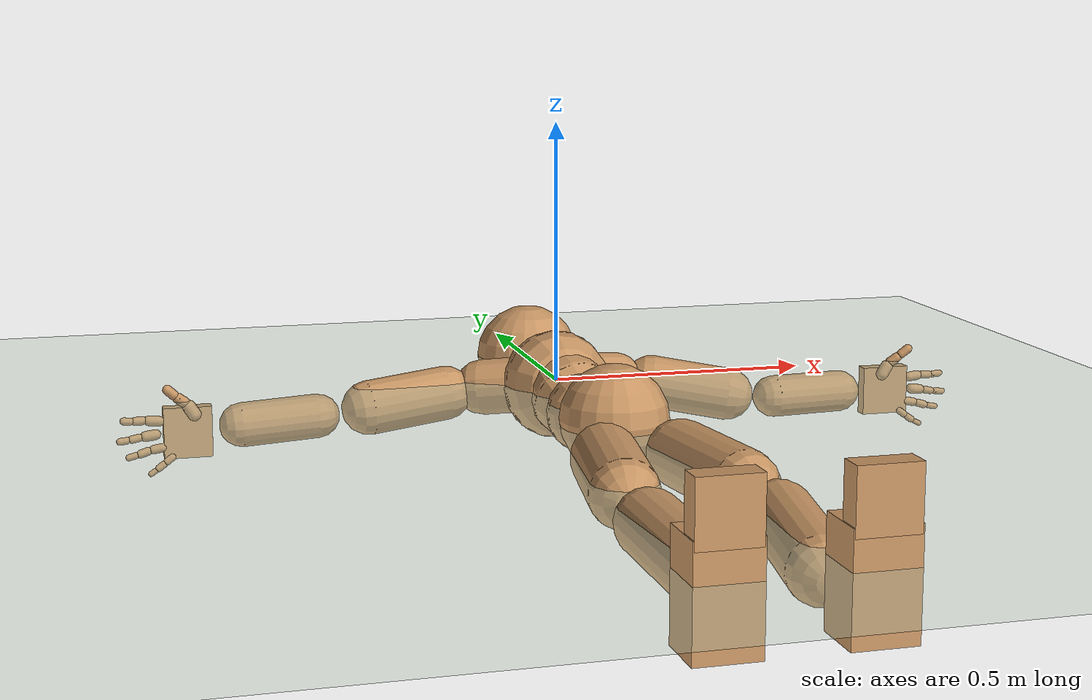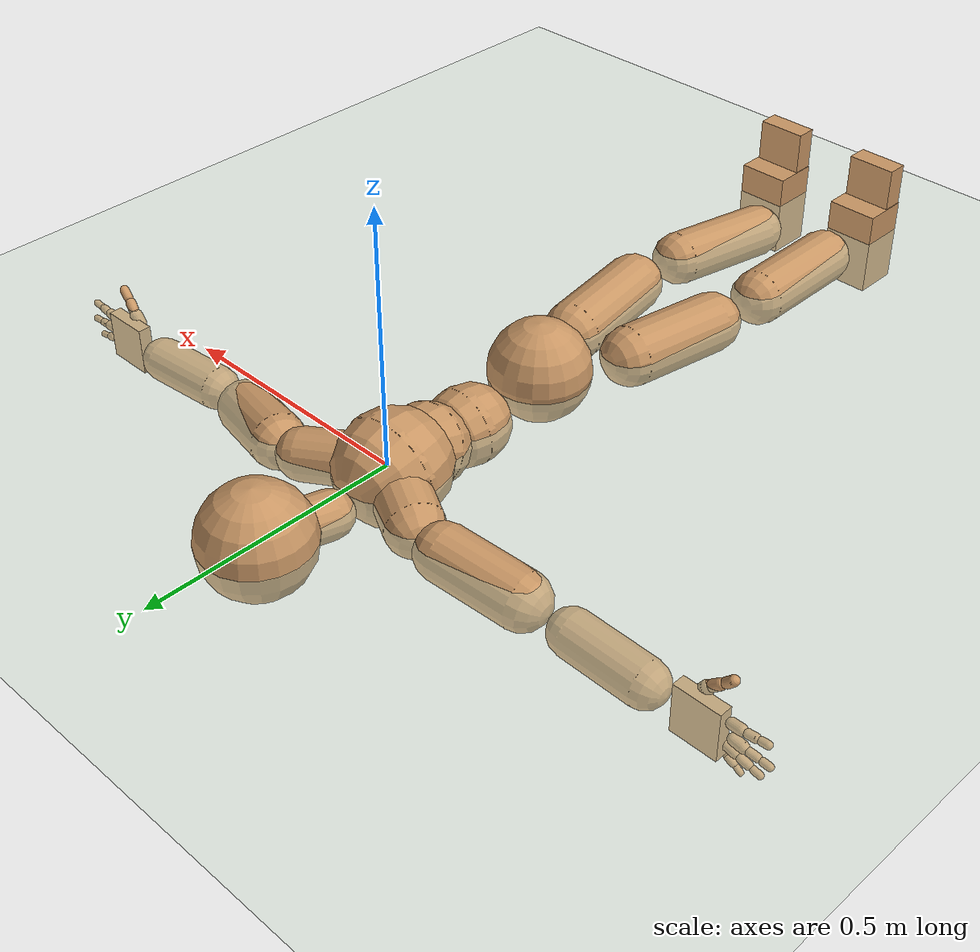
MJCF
<mujoco model="humanoid">
  <compiler coordinate="local"/>
  <default>
    <joint damping="0.0" armature="0.01" stiffness="0.0" limited="true"/>
    <geom conaffinity="1" condim="3" contype="7" margin="0.001" rgba="0.8 0.6 .4 1"/>
  </default>
  <asset>
    <texture type="skybox" builtin="gradient" rgb1=".4 .5 .6" rgb2="0 0 0" width="100" height="100"/>
    <texture builtin="flat" height="1278" mark="cross" markrgb="1 1 1" name="texgeom" random="0.01" rgb1="0.8 0.6 0.4" rgb2="0.8 0.6 0.4" type="cube" width="127"/>
    <texture builtin="checker" height="100" name="texplane" rgb1="0 0 0" rgb2="0.8 0.8 0.8" type="2d" width="100"/>
    <material name="MatPlane" reflectance="0.5" shininess="1" specular="1" texrepeat="60 60" texture="texplane"/>
    <material name="geom" texture="texgeom" texuniform="true"/>
  </asset>
  <worldbody>
    <light cutoff="100" diffuse="1 1 1" dir="-0 0 -1.3" directional="true" exponent="1" pos="0 0 1.3" specular=".1 .1 .1"/>
    <geom conaffinity="1" condim="3" name="floor" pos="0 0 0" rgba="0.8 0.9 0.8 1" size="100 100 .2" type="plane" material="MatPlane"/>
    <body name="Pelvis" pos="0.0028 -0.3775 0.0085">
      <freejoint name="Pelvis"/>
      <geom type="sphere" contype="1" conaffinity="1" density="4629.6296296296305" size="0.0980" pos="0.0000 0.0000 0.0000" name="Pelvis"/>
      <body name="L_Hip" pos="0.0554 -0.0938 -0.0258">
        <joint name="L_Hip_x" type="hinge" pos="0 0 0" axis="1 0 0" user="250 2.5 1 500 10 2" armature="0.01" range="-90.0000 90.0000" damping="0" stiffness="0"/>
        <joint name="L_Hip_y" type="hinge" pos="0 0 0" axis="0 1 0" user="250 2.5 1 500 10 2" armature="0.01" range="-90.0000 90.0000" damping="0" stiffness="0"/>
        <joint name="L_Hip_z" type="hinge" pos="0 0 0" axis="0 0 1" user="250 2.5 1 500 10 2" armature="0.01" range="-90.0000 90.0000" damping="0" stiffness="0"/>
        <geom type="capsule" contype="1" conaffinity="1" density="2040.816327" fromto="0.0114 -0.0709 -0.0008 0.0457 -0.2837 -0.0032" size="0.0594" name="L_Hip"/>
        <body name="L_Knee" pos="0.0572 -0.3546 -0.0039">
          <joint name="L_Knee_x" type="hinge" pos="0 0 0" axis="1 0 0" user="250 2.5 1 500 10 2" armature="0.01" range="-180.0000 180.0000" damping="0" stiffness="0"/>
          <joint name="L_Knee_y" type="hinge" pos="0 0 0" axis="0 1 0" user="250 2.5 1 500 10 2" armature="0.01" range="-5.6250 5.6250" damping="0" stiffness="0"/>
          <joint name="L_Knee_z" type="hinge" pos="0 0 0" axis="0 0 1" user="250 2.5 1 500 10 2" armature="0.01" range="-5.6250 5.6250" damping="0" stiffness="0"/>
          <geom type="capsule" contype="1" conaffinity="1" density="1234.567901" fromto="-0.0090 -0.0750 -0.0057 -0.0359 -0.3001 -0.0229" size="0.0537" name="L_Knee"/>
          <body name="L_Ankle" pos="-0.0448 -0.3751 -0.0286">
            <joint name="L_Ankle_x" type="hinge" pos="0 0 0" axis="1 0 0" user="150 2.5 1 500 10 2" armature="0.01" range="-90.0000 90.0000" damping="0" stiffness="0"/>
            <joint name="L_Ankle_y" type="hinge" pos="0 0 0" axis="0 1 0" user="150 2.5 1 500 10 2" armature="0.01" range="-90.0000 90.0000" damping="0" stiffness="0"/>
            <joint name="L_Ankle_z" type="hinge" pos="0 0 0" axis="0 0 1" user="150 2.5 1 500 10 2" armature="0.01" range="-90.0000 90.0000" damping="0" stiffness="0"/>
            <geom type="box" density="448.896675" pos="0.0422 -0.0264 0.0229" size="0.0513 0.0461 0.0861" quat="1.0000 0.0000 0.0000 0.0000" name="L_Ankle"/>
            <body name="L_Toe" pos="0.0487 -0.0549 0.1186">
              <joint name="L_Toe_x" type="hinge" pos="0 0 0" axis="1 0 0" user="150 1 1 500 1 1" armature="0.01" range="-90.0000 90.0000" damping="0" stiffness="0"/>
              <joint name="L_Toe_y" type="hinge" pos="0 0 0" axis="0 1 0" user="150 1 1 500 1 1" armature="0.01" range="-45.0000 45.0000" damping="0" stiffness="0"/>
              <joint name="L_Toe_z" type="hinge" pos="0 0 0" axis="0 0 1" user="150 1 1 500 1 1" armature="0.01" range="-45.0000 45.0000" damping="0" stiffness="0"/>
              <geom type="box" density="423.112687" pos="-0.0065 0.0034 0.0260" size="0.0494 0.0211 0.0505" quat="1.0000 0.0000 0.0000 0.0000" name="L_Toe"/>
            </body>
          </body>
        </body>
      </body>
      <body name="R_Hip" pos="-0.0602 -0.1061 -0.0198">
        <joint name="R_Hip_x" type="hinge" pos="0 0 0" axis="1 0 0" user="250 2.5 1 500 10 2" armature="0.01" range="-90.0000 90.0000" damping="0" stiffness="0"/>
        <joint name="R_Hip_y" type="hinge" pos="0 0 0" axis="0 1 0" user="250 2.5 1 500 10 2" armature="0.01" range="-90.0000 90.0000" damping="0" stiffness="0"/>
        <joint name="R_Hip_z" type="hinge" pos="0 0 0" axis="0 0 1" user="250 2.5 1 500 10 2" armature="0.01" range="-90.0000 90.0000" damping="0" stiffness="0"/>
        <geom type="capsule" contype="1" conaffinity="1" density="2040.816327" fromto="-0.0093 -0.0675 -0.0025 -0.0371 -0.2699 -0.0098" size="0.0589" name="R_Hip"/>
        <body name="R_Knee" pos="-0.0463 -0.3374 -0.0123">
          <joint name="R_Knee_x" type="hinge" pos="0 0 0" axis="1 0 0" user="250 2.5 1 500 10 2" armature="0.01" range="-180.0000 180.0000" damping="0" stiffness="0"/>
          <joint name="R_Knee_y" type="hinge" pos="0 0 0" axis="0 1 0" user="250 2.5 1 500 10 2" armature="0.01" range="-5.6250 5.6250" damping="0" stiffness="0"/>
          <joint name="R_Knee_z" type="hinge" pos="0 0 0" axis="0 0 1" user="250 2.5 1 500 10 2" armature="0.01" range="-5.6250 5.6250" damping="0" stiffness="0"/>
          <geom type="capsule" contype="1" conaffinity="1" density="1234.567901" fromto="0.0032 -0.0764 -0.0034 0.0127 -0.3058 -0.0136" size="0.0554" name="R_Knee"/>
          <body name="R_Ankle" pos="0.0159 -0.3822 -0.017">
            <joint name="R_Ankle_x" type="hinge" pos="0 0 0" axis="1 0 0" user="150 1 1 500 10 2" armature="0.01" range="-90.0000 90.0000" damping="0" stiffness="0"/>
            <joint name="R_Ankle_y" type="hinge" pos="0 0 0" axis="0 1 0" user="150 1 1 500 10 2" armature="0.01" range="-90.0000 90.0000" damping="0" stiffness="0"/>
            <joint name="R_Ankle_z" type="hinge" pos="0 0 0" axis="0 0 1" user="150 1 1 500 10 2" armature="0.01" range="-90.0000 90.0000" damping="0" stiffness="0"/>
            <geom type="box" density="448.888588" pos="-0.0249 -0.0242 0.0138" size="0.0513 0.0461 0.0861" quat="1.0000 0.0000 0.0000 0.0000" name="R_Ankle"/>
            <body name="R_Toe" pos="-0.0397 -0.0556 0.1195">
              <joint name="R_Toe_x" type="hinge" pos="0 0 0" axis="1 0 0" user="150 1 1 500 1 1" armature="0.01" range="-90.0000 90.0000" damping="0" stiffness="0"/>
              <joint name="R_Toe_y" type="hinge" pos="0 0 0" axis="0 1 0" user="150 1 1 500 1 1" armature="0.01" range="-45.0000 45.0000" damping="0" stiffness="0"/>
              <joint name="R_Toe_z" type="hinge" pos="0 0 0" axis="0 0 1" user="150 1 1 500 1 1" armature="0.01" range="-45.0000 45.0000" damping="0" stiffness="0"/>
              <geom type="box" density="423.111209" pos="0.0147 0.0063 0.0160" size="0.0494 0.0211 0.0505" quat="1.0000 0.0000 0.0000 0.0000" name="R_Toe"/>
            </body>
          </body>
        </body>
      </body>
      <body name="Torso" pos="-0.003 0.1103 -0.0275">
        <joint name="Torso_x" type="hinge" pos="0 0 0" axis="1 0 0" user="500 5 1 500 10 2" armature="0.01" range="-60.0000 60.0000" damping="0" stiffness="0"/>
        <joint name="Torso_y" type="hinge" pos="0 0 0" axis="0 1 0" user="500 5 1 500 10 2" armature="0.01" range="-60.0000 60.0000" damping="0" stiffness="0"/>
        <joint name="Torso_z" type="hinge" pos="0 0 0" axis="0 0 1" user="500 5 1 500 10 2" armature="0.01" range="-60.0000 60.0000" damping="0" stiffness="0"/>
        <geom type="capsule" contype="1" conaffinity="1" density="2040.816327" fromto="0.0045 0.0650 -0.0027 0.0055 0.0794 -0.0033" size="0.0743" name="Torso"/>
        <body name="Spine" pos="0.01 0.1444 -0.0059">
          <joint name="Spine_x" type="hinge" pos="0 0 0" axis="1 0 0" user="500 5 1 500 10 2" armature="0.01" range="-60.0000 60.0000" damping="0" stiffness="0"/>
          <joint name="Spine_y" type="hinge" pos="0 0 0" axis="0 1 0" user="500 5 1 500 10 2" armature="0.01" range="-60.0000 60.0000" damping="0" stiffness="0"/>
          <joint name="Spine_z" type="hinge" pos="0 0 0" axis="0 0 1" user="500 5 1 500 10 2" armature="0.01" range="-60.0000 60.0000" damping="0" stiffness="0"/>
          <geom type="capsule" contype="1" conaffinity="1" density="2040.816327" fromto="-0.0049 0.0257 0.0117 -0.0060 0.0314 0.0143" size="0.0784" name="Spine"/>
          <body name="Chest" pos="-0.011 0.0571 0.026">
            <joint name="Chest_x" type="hinge" pos="0 0 0" axis="1 0 0" user="500 5 1 500 10 2" armature="0.01" range="-60.0000 60.0000" damping="0" stiffness="0"/>
            <joint name="Chest_y" type="hinge" pos="0 0 0" axis="0 1 0" user="500 5 1 500 10 2" armature="0.01" range="-60.0000 60.0000" damping="0" stiffness="0"/>
            <joint name="Chest_z" type="hinge" pos="0 0 0" axis="0 0 1" user="500 5 1 500 10 2" armature="0.01" range="-60.0000 60.0000" damping="0" stiffness="0"/>
            <geom type="capsule" contype="1" conaffinity="1" density="2040.816327" fromto="-0.0022 0.0514 -0.0061 -0.0027 0.0629 -0.0075" size="0.1035" name="Chest"/>
            <body name="Neck" pos="-0.0126 0.1693 -0.0266">
              <joint name="Neck_x" type="hinge" pos="0 0 0" axis="1 0 0" user="150 1 1 250 50 4" armature="0.01" range="-180.0000 180.0000" damping="0" stiffness="0"/>
              <joint name="Neck_y" type="hinge" pos="0 0 0" axis="0 1 0" user="150 1 1 250 50 4" armature="0.01" range="-180.0000 180.0000" damping="0" stiffness="0"/>
              <joint name="Neck_z" type="hinge" pos="0 0 0" axis="0 0 1" user="150 1 1 250 50 4" armature="0.01" range="-180.0000 180.0000" damping="0" stiffness="0"/>
              <geom type="capsule" contype="1" conaffinity="1" density="1000" fromto="0.0051 0.0339 0.0042 0.0206 0.1355 0.0169" size="0.0438" name="Neck"/>
              <body name="Head" pos="0.0257 0.1693 0.0211">
                <joint name="Head_x" type="hinge" pos="0 0 0" axis="1 0 0" user="150 1 1 250 50 4" armature="0.01" range="-90.0000 90.0000" damping="0" stiffness="0"/>
                <joint name="Head_y" type="hinge" pos="0 0 0" axis="0 1 0" user="150 1 1 250 50 4" armature="0.01" range="-90.0000 90.0000" damping="0" stiffness="0"/>
                <joint name="Head_z" type="hinge" pos="0 0 0" axis="0 0 1" user="150 1 1 250 50 4" armature="0.01" range="-90.0000 90.0000" damping="0" stiffness="0"/>
                <geom type="sphere" contype="1" conaffinity="1" density="1000" size="0.1040" pos="0.0000 0.0000 0.0000" name="Head"/>
              </body>
            </body>
            <body name="L_Thorax" pos="0.0461 0.0872 -0.0041">
              <joint name="L_Thorax_x" type="hinge" pos="0 0 0" axis="1 0 0" user="200 2 1 500 50 4" armature="0.01" range="-180.0000 180.0000" damping="0" stiffness="0"/>
              <joint name="L_Thorax_y" type="hinge" pos="0 0 0" axis="0 1 0" user="200 2 1 500 50 4" armature="0.01" range="-180.0000 180.0000" damping="0" stiffness="0"/>
              <joint name="L_Thorax_z" type="hinge" pos="0 0 0" axis="0 0 1" user="200 2 1 500 50 4" armature="0.01" range="-180.0000 180.0000" damping="0" stiffness="0"/>
              <geom type="capsule" contype="1" conaffinity="1" density="1000" fromto="0.0242 0.0113 -0.0033 0.0968 0.0452 -0.0130" size="0.0492" name="L_Thorax"/>
              <body name="L_Shoulder" pos="0.121 0.0566 -0.0163">
                <joint name="L_Shoulder_x" type="hinge" pos="0 0 0" axis="1 0 0" user="200 2 1 500 50 4" armature="0.01" range="-180.0000 180.0000" damping="0" stiffness="0"/>
                <joint name="L_Shoulder_y" type="hinge" pos="0 0 0" axis="0 1 0" user="200 2 1 500 50 4" armature="0.01" range="-180.0000 180.0000" damping="0" stiffness="0"/>
                <joint name="L_Shoulder_z" type="hinge" pos="0 0 0" axis="0 0 1" user="200 2 1 500 50 4" armature="0.01" range="-180.0000 180.0000" damping="0" stiffness="0"/>
                <geom type="capsule" contype="1" conaffinity="1" density="1000" fromto="0.0485 -0.0139 -0.0085 0.1942 -0.0555 -0.0339" size="0.0524" name="L_Shoulder"/>
                <body name="L_Elbow" pos="0.2427 -0.0693 -0.0423">
                  <joint name="L_Elbow_x" type="hinge" pos="0 0 0" axis="1 0 0" user="150 1 1 150 10 2" armature="0.01" range="-720.0000 720.0000" damping="0" stiffness="0"/>
                  <joint name="L_Elbow_y" type="hinge" pos="0 0 0" axis="0 1 0" user="150 1 1 150 10 2" armature="0.01" range="-720.0000 720.0000" damping="0" stiffness="0"/>
                  <joint name="L_Elbow_z" type="hinge" pos="0 0 0" axis="0 0 1" user="150 1 1 150 10 2" armature="0.01" range="-720.0000 720.0000" damping="0" stiffness="0"/>
                  <geom type="capsule" contype="1" conaffinity="1" density="1000" fromto="0.0488 0.0045 -0.0000 0.1951 0.0179 -0.0001" size="0.0416" name="L_Elbow"/>
                  <body name="L_Wrist" pos="0.2439 0.0224 -0.0001">
                    <joint name="L_Wrist_x" type="hinge" pos="0 0 0" axis="1 0 0" user="100 1 1 150 1 1" armature="0.01" range="-180.0000 180.0000" damping="0" stiffness="0"/>
                    <joint name="L_Wrist_y" type="hinge" pos="0 0 0" axis="0 1 0" user="100 1 1 150 1 1" armature="0.01" range="-180.0000 180.0000" damping="0" stiffness="0"/>
                    <joint name="L_Wrist_z" type="hinge" pos="0 0 0" axis="0 0 1" user="100 1 1 150 1 1" armature="0.01" range="-180.0000 180.0000" damping="0" stiffness="0"/>
                    <geom type="box" density="1217.118839" pos="0.0515 -0.0013 -0.0028" size="0.0475 0.0127 0.0481" quat="1.0000 0.0000 0.0000 0.0000" name="L_Wrist"/>
                    <body name="L_Index1" pos="0.1 -0.0083 0.0206">
                      <joint name="L_Index1_x" type="hinge" pos="0 0 0" axis="1 0 0" user="100 10 1 150" armature="0.01" range="-180.0000 180.0000" damping="0" stiffness="0"/>
                      <joint name="L_Index1_y" type="hinge" pos="0 0 0" axis="0 1 0" user="100 10 1 150" armature="0.01" range="-180.0000 180.0000" damping="0" stiffness="0"/>
                      <joint name="L_Index1_z" type="hinge" pos="0 0 0" axis="0 0 1" user="100 10 1 150" armature="0.01" range="-180.0000 180.0000" damping="0" stiffness="0"/>
                      <geom type="capsule" contype="1" conaffinity="1" density="1000" fromto="0.0064 0.0005 0.0006 0.0257 0.0019 0.0024" size="0.0095" name="L_Index1"/>
                      <body name="L_Index2" pos="0.0322 0.0024 0.0031">
                        <joint name="L_Index2_x" type="hinge" pos="0 0 0" axis="1 0 0" user="100 10 1 150" armature="0.01" range="-180.0000 180.0000" damping="0" stiffness="0"/>
                        <joint name="L_Index2_y" type="hinge" pos="0 0 0" axis="0 1 0" user="100 10 1 150" armature="0.01" range="-180.0000 180.0000" damping="0" stiffness="0"/>
                        <joint name="L_Index2_z" type="hinge" pos="0 0 0" axis="0 0 1" user="100 10 1 150" armature="0.01" range="-180.0000 180.0000" damping="0" stiffness="0"/>
                        <geom type="capsule" contype="1" conaffinity="1" density="1000" fromto="0.0045 -0.0005 -0.0000 0.0181 -0.0019 -0.0001" size="0.0079" name="L_Index2"/>
                        <body name="L_Index3" pos="0.0227 -0.0024 -0.0001">
                          <joint name="L_Index3_x" type="hinge" pos="0 0 0" axis="1 0 0" user="100 10 1 150" armature="0.01" range="-180.0000 180.0000" damping="0" stiffness="0"/>
                          <joint name="L_Index3_y" type="hinge" pos="0 0 0" axis="0 1 0" user="100 10 1 150" armature="0.01" range="-180.0000 180.0000" damping="0" stiffness="0"/>
                          <joint name="L_Index3_z" type="hinge" pos="0 0 0" axis="0 0 1" user="100 10 1 150" armature="0.01" range="-180.0000 180.0000" damping="0" stiffness="0"/>
                          <geom type="capsule" contype="1" conaffinity="1" density="1000" fromto="0.0049 -0.0001 0.0004 0.0197 -0.0003 0.0015" size="0.0066" name="L_Index3"/>
                        </body>
                      </body>
                    </body>
                    <body name="L_Middle1" pos="0.1076 -0.0059 -0.0037">
                      <joint name="L_Middle1_x" type="hinge" pos="0 0 0" axis="1 0 0" user="100 10 1 150" armature="0.01" range="-180.0000 180.0000" damping="0" stiffness="0"/>
                      <joint name="L_Middle1_y" type="hinge" pos="0 0 0" axis="0 1 0" user="100 10 1 150" armature="0.01" range="-180.0000 180.0000" damping="0" stiffness="0"/>
                      <joint name="L_Middle1_z" type="hinge" pos="0 0 0" axis="0 0 1" user="100 10 1 150" armature="0.01" range="-180.0000 180.0000" damping="0" stiffness="0"/>
                      <geom type="capsule" contype="1" conaffinity="1" density="1000" fromto="0.0062 0.0002 -0.0008 0.0247 0.0006 -0.0032" size="0.0098" name="L_Middle1"/>
                      <body name="L_Middle2" pos="0.0308 0.0008 -0.004">
                        <joint name="L_Middle2_x" type="hinge" pos="0 0 0" axis="1 0 0" user="100 10 1 150" armature="0.01" range="-180.0000 180.0000" damping="0" stiffness="0"/>
                        <joint name="L_Middle2_y" type="hinge" pos="0 0 0" axis="0 1 0" user="100 10 1 150" armature="0.01" range="-180.0000 180.0000" damping="0" stiffness="0"/>
                        <joint name="L_Middle2_z" type="hinge" pos="0 0 0" axis="0 0 1" user="100 10 1 150" armature="0.01" range="-180.0000 180.0000" damping="0" stiffness="0"/>
                        <geom type="capsule" contype="1" conaffinity="1" density="1000" fromto="0.0047 -0.0004 -0.0008 0.0189 -0.0017 -0.0033" size="0.0073" name="L_Middle2"/>
                        <body name="L_Middle3" pos="0.0236 -0.0021 -0.0042">
                          <joint name="L_Middle3_x" type="hinge" pos="0 0 0" axis="1 0 0" user="100 10 1 150" armature="0.01" range="-180.0000 180.0000" damping="0" stiffness="0"/>
                          <joint name="L_Middle3_y" type="hinge" pos="0 0 0" axis="0 1 0" user="100 10 1 150" armature="0.01" range="-180.0000 180.0000" damping="0" stiffness="0"/>
                          <joint name="L_Middle3_z" type="hinge" pos="0 0 0" axis="0 0 1" user="100 10 1 150" armature="0.01" range="-180.0000 180.0000" damping="0" stiffness="0"/>
                          <geom type="capsule" contype="1" conaffinity="1" density="1000" fromto="0.0051 -0.0000 -0.0004 0.0205 -0.0001 -0.0017" size="0.0063" name="L_Middle3"/>
                        </body>
                      </body>
                    </body>
                    <body name="L_Pinky1" pos="0.082 -0.0142 -0.0454">
                      <joint name="L_Pinky1_x" type="hinge" pos="0 0 0" axis="1 0 0" user="100 10 1 150" armature="0.01" range="-180.0000 180.0000" damping="0" stiffness="0"/>
                      <joint name="L_Pinky1_y" type="hinge" pos="0 0 0" axis="0 1 0" user="100 10 1 150" armature="0.01" range="-180.0000 180.0000" damping="0" stiffness="0"/>
                      <joint name="L_Pinky1_z" type="hinge" pos="0 0 0" axis="0 0 1" user="100 10 1 150" armature="0.01" range="-180.0000 180.0000" damping="0" stiffness="0"/>
                      <geom type="capsule" contype="1" conaffinity="1" density="1000" fromto="0.0032 -0.0003 -0.0024 0.0128 -0.0011 -0.0098" size="0.0069" name="L_Pinky1"/>
                      <body name="L_Pinky2" pos="0.016 -0.0013 -0.0122">
                        <joint name="L_Pinky2_x" type="hinge" pos="0 0 0" axis="1 0 0" user="100 10 1 150" armature="0.01" range="-180.0000 180.0000" damping="0" stiffness="0"/>
                        <joint name="L_Pinky2_y" type="hinge" pos="0 0 0" axis="0 1 0" user="100 10 1 150" armature="0.01" range="-180.0000 180.0000" damping="0" stiffness="0"/>
                        <joint name="L_Pinky2_z" type="hinge" pos="0 0 0" axis="0 0 1" user="100 10 1 150" armature="0.01" range="-180.0000 180.0000" damping="0" stiffness="0"/>
                        <geom type="capsule" contype="1" conaffinity="1" density="1000" fromto="0.0032 -0.0004 -0.0023 0.0127 -0.0015 -0.0090" size="0.0067" name="L_Pinky2"/>
                        <body name="L_Pinky3" pos="0.0159 -0.0018 -0.0113">
                          <joint name="L_Pinky3_x" type="hinge" pos="0 0 0" axis="1 0 0" user="100 10 1 150" armature="0.01" range="-180.0000 180.0000" damping="0" stiffness="0"/>
                          <joint name="L_Pinky3_y" type="hinge" pos="0 0 0" axis="0 1 0" user="100 10 1 150" armature="0.01" range="-180.0000 180.0000" damping="0" stiffness="0"/>
                          <joint name="L_Pinky3_z" type="hinge" pos="0 0 0" axis="0 0 1" user="100 10 1 150" armature="0.01" range="-180.0000 180.0000" damping="0" stiffness="0"/>
                          <geom type="capsule" contype="1" conaffinity="1" density="1000" fromto="0.0036 0.0000 -0.0019 0.0143 0.0001 -0.0074" size="0.0051" name="L_Pinky3"/>
                        </body>
                      </body>
                    </body>
                    <body name="L_Ring1" pos="0.0956 -0.0088 -0.0282">
                      <joint name="L_Ring1_x" type="hinge" pos="0 0 0" axis="1 0 0" user="100 10 1 150" armature="0.01" range="-180.0000 180.0000" damping="0" stiffness="0"/>
                      <joint name="L_Ring1_y" type="hinge" pos="0 0 0" axis="0 1 0" user="100 10 1 150" armature="0.01" range="-180.0000 180.0000" damping="0" stiffness="0"/>
                      <joint name="L_Ring1_z" type="hinge" pos="0 0 0" axis="0 0 1" user="100 10 1 150" armature="0.01" range="-180.0000 180.0000" damping="0" stiffness="0"/>
                      <geom type="capsule" contype="1" conaffinity="1" density="1000" fromto="0.0057 0.0003 -0.0011 0.0228 0.0012 -0.0042" size="0.0083" name="L_Ring1"/>
                      <body name="L_Ring2" pos="0.0285 0.0016 -0.0053">
                        <joint name="L_Ring2_x" type="hinge" pos="0 0 0" axis="1 0 0" user="100 10 1 150" armature="0.01" range="-180.0000 180.0000" damping="0" stiffness="0"/>
                        <joint name="L_Ring2_y" type="hinge" pos="0 0 0" axis="0 1 0" user="100 10 1 150" armature="0.01" range="-180.0000 180.0000" damping="0" stiffness="0"/>
                        <joint name="L_Ring2_z" type="hinge" pos="0 0 0" axis="0 0 1" user="100 10 1 150" armature="0.01" range="-180.0000 180.0000" damping="0" stiffness="0"/>
                        <geom type="capsule" contype="1" conaffinity="1" density="1000" fromto="0.0046 -0.0003 -0.0014 0.0185 -0.0012 -0.0057" size="0.0077" name="L_Ring2"/>
                        <body name="L_Ring3" pos="0.0231 -0.0016 -0.0071">
                          <joint name="L_Ring3_x" type="hinge" pos="0 0 0" axis="1 0 0" user="100 10 1 150" armature="0.01" range="-180.0000 180.0000" damping="0" stiffness="0"/>
                          <joint name="L_Ring3_y" type="hinge" pos="0 0 0" axis="0 1 0" user="100 10 1 150" armature="0.01" range="-180.0000 180.0000" damping="0" stiffness="0"/>
                          <joint name="L_Ring3_z" type="hinge" pos="0 0 0" axis="0 0 1" user="100 10 1 150" armature="0.01" range="-180.0000 180.0000" damping="0" stiffness="0"/>
                          <geom type="capsule" contype="1" conaffinity="1" density="1000" fromto="0.0050 0.0001 -0.0010 0.0201 0.0004 -0.0041" size="0.0059" name="L_Ring3"/>
                        </body>
                      </body>
                    </body>
                    <body name="L_Thumb1" pos="0.0387 -0.0185 0.0272">
                      <joint name="L_Thumb1_x" type="hinge" pos="0 0 0" axis="1 0 0" user="100 10 1 150" armature="0.01" range="-180.0000 180.0000" damping="0" stiffness="0"/>
                      <joint name="L_Thumb1_y" type="hinge" pos="0 0 0" axis="0 1 0" user="100 10 1 150" armature="0.01" range="-180.0000 180.0000" damping="0" stiffness="0"/>
                      <joint name="L_Thumb1_z" type="hinge" pos="0 0 0" axis="0 0 1" user="100 10 1 150" armature="0.01" range="-180.0000 180.0000" damping="0" stiffness="0"/>
                      <geom type="capsule" contype="1" conaffinity="1" density="1000" fromto="0.0034 0.0003 0.0052 0.0134 0.0011 0.0208" size="0.0124" name="L_Thumb1"/>
                      <body name="L_Thumb2" pos="0.0168 0.0013 0.026">
                        <joint name="L_Thumb2_x" type="hinge" pos="0 0 0" axis="1 0 0" user="100 10 1 150" armature="0.01" range="-180.0000 180.0000" damping="0" stiffness="0"/>
                        <joint name="L_Thumb2_y" type="hinge" pos="0 0 0" axis="0 1 0" user="100 10 1 150" armature="0.01" range="-180.0000 180.0000" damping="0" stiffness="0"/>
                        <joint name="L_Thumb2_z" type="hinge" pos="0 0 0" axis="0 0 1" user="100 10 1 150" armature="0.01" range="-180.0000 180.0000" damping="0" stiffness="0"/>
                        <geom type="capsule" contype="1" conaffinity="1" density="1000" fromto="0.0041 -0.0011 0.0032 0.0164 -0.0042 0.0127" size="0.0099" name="L_Thumb2"/>
                        <body name="L_Thumb3" pos="0.0205 -0.0053 0.0159">
                          <joint name="L_Thumb3_x" type="hinge" pos="0 0 0" axis="1 0 0" user="100 10 1 150" armature="0.01" range="-180.0000 180.0000" damping="0" stiffness="0"/>
                          <joint name="L_Thumb3_y" type="hinge" pos="0 0 0" axis="0 1 0" user="100 10 1 150" armature="0.01" range="-180.0000 180.0000" damping="0" stiffness="0"/>
                          <joint name="L_Thumb3_z" type="hinge" pos="0 0 0" axis="0 0 1" user="100 10 1 150" armature="0.01" range="-180.0000 180.0000" damping="0" stiffness="0"/>
                          <geom type="capsule" contype="1" conaffinity="1" density="1000" fromto="0.0045 -0.0007 0.0036 0.0180 -0.0026 0.0143" size="0.009" name="L_Thumb3"/>
                        </body>
                      </body>
                    </body>
                  </body>
                </body>
              </body>
            </body>
            <body name="R_Thorax" pos="-0.0482 0.0865 -0.0102">
              <joint name="R_Thorax_x" type="hinge" pos="0 0 0" axis="1 0 0" user="200 2 1 150 10 2" armature="0.01" range="-180.0000 180.0000" damping="0" stiffness="0"/>
              <joint name="R_Thorax_y" type="hinge" pos="0 0 0" axis="0 1 0" user="200 2 1 150 10 2" armature="0.01" range="-180.0000 180.0000" damping="0" stiffness="0"/>
              <joint name="R_Thorax_z" type="hinge" pos="0 0 0" axis="0 0 1" user="200 2 1 150 10 2" armature="0.01" range="-180.0000 180.0000" damping="0" stiffness="0"/>
              <geom type="capsule" contype="1" conaffinity="1" density="1000" fromto="-0.0209 0.0104 -0.0026 -0.0836 0.0418 -0.0104" size="0.054" name="R_Thorax"/>
              <body name="R_Shoulder" pos="-0.1044 0.0522 -0.013">
                <joint name="R_Shoulder_x" type="hinge" pos="0 0 0" axis="1 0 0" user="200 2 1 250 10 2" armature="0.01" range="-180.0000 180.0000" damping="0" stiffness="0"/>
                <joint name="R_Shoulder_y" type="hinge" pos="0 0 0" axis="0 1 0" user="200 2 1 250 10 2" armature="0.01" range="-180.0000 180.0000" damping="0" stiffness="0"/>
                <joint name="R_Shoulder_z" type="hinge" pos="0 0 0" axis="0 0 1" user="200 2 1 250 10 2" armature="0.01" range="-180.0000 180.0000" damping="0" stiffness="0"/>
                <geom type="capsule" contype="1" conaffinity="1" density="1000" fromto="-0.0519 -0.0066 -0.0054 -0.2075 -0.0263 -0.0216" size="0.0523" name="R_Shoulder"/>
                <body name="R_Elbow" pos="-0.2594 -0.0329 -0.027">
                  <joint name="R_Elbow_x" type="hinge" pos="0 0 0" axis="1 0 0" user="150 1 1 150 10 2" armature="0.01" range="-720.0000 720.0000" damping="0" stiffness="0"/>
                  <joint name="R_Elbow_y" type="hinge" pos="0 0 0" axis="0 1 0" user="150 1 1 150 10 2" armature="0.01" range="-720.0000 720.0000" damping="0" stiffness="0"/>
                  <joint name="R_Elbow_z" type="hinge" pos="0 0 0" axis="0 0 1" user="150 1 1 150 10 2" armature="0.01" range="-720.0000 720.0000" damping="0" stiffness="0"/>
                  <geom type="capsule" contype="1" conaffinity="1" density="1000" fromto="-0.0482 -0.0012 -0.0026 -0.1930 -0.0047 -0.0103" size="0.0419" name="R_Elbow"/>
                  <body name="R_Wrist" pos="-0.2412 -0.0058 -0.0128">
                    <joint name="R_Wrist_x" type="hinge" pos="0 0 0" axis="1 0 0" user="100 1 1 150 1 1" armature="0.01" range="-180.0000 180.0000" damping="0" stiffness="0"/>
                    <joint name="R_Wrist_y" type="hinge" pos="0 0 0" axis="0 1 0" user="100 1 1 150 1 1" armature="0.01" range="-180.0000 180.0000" damping="0" stiffness="0"/>
                    <joint name="R_Wrist_z" type="hinge" pos="0 0 0" axis="0 0 1" user="100 1 1 150 1 1" armature="0.01" range="-180.0000 180.0000" damping="0" stiffness="0"/>
                    <geom type="box" density="1244.827481" pos="-0.0527 -0.0045 -0.0026" size="0.0448 0.0127 0.0481" quat="1.0000 0.0000 0.0000 0.0000" name="R_Wrist"/>
                    <body name="R_Index1" pos="-0.0981 -0.0114 0.0207">
                      <joint name="R_Index1_x" type="hinge" pos="0 0 0" axis="1 0 0" user="100 10 1 150" armature="0.01" range="-180.0000 180.0000" damping="0" stiffness="0"/>
                      <joint name="R_Index1_y" type="hinge" pos="0 0 0" axis="0 1 0" user="100 10 1 150" armature="0.01" range="-180.0000 180.0000" damping="0" stiffness="0"/>
                      <joint name="R_Index1_z" type="hinge" pos="0 0 0" axis="0 0 1" user="100 10 1 150" armature="0.01" range="-180.0000 180.0000" damping="0" stiffness="0"/>
                      <geom type="capsule" contype="1" conaffinity="1" density="1000" fromto="-0.0064 0.0005 0.0006 -0.0257 0.0019 0.0025" size="0.0095" name="R_Index1"/>
                      <body name="R_Index2" pos="-0.0322 0.0024 0.0031">
                        <joint name="R_Index2_x" type="hinge" pos="0 0 0" axis="1 0 0" user="100 10 1 150" armature="0.01" range="-180.0000 180.0000" damping="0" stiffness="0"/>
                        <joint name="R_Index2_y" type="hinge" pos="0 0 0" axis="0 1 0" user="100 10 1 150" armature="0.01" range="-180.0000 180.0000" damping="0" stiffness="0"/>
                        <joint name="R_Index2_z" type="hinge" pos="0 0 0" axis="0 0 1" user="100 10 1 150" armature="0.01" range="-180.0000 180.0000" damping="0" stiffness="0"/>
                        <geom type="capsule" contype="1" conaffinity="1" density="1000" fromto="-0.0045 -0.0005 -0.0000 -0.0181 -0.0019 -0.0001" size="0.0079" name="R_Index2"/>
                        <body name="R_Index3" pos="-0.0227 -0.0024 -0.0001">
                          <joint name="R_Index3_x" type="hinge" pos="0 0 0" axis="1 0 0" user="100 10 1 150" armature="0.01" range="-180.0000 180.0000" damping="0" stiffness="0"/>
                          <joint name="R_Index3_y" type="hinge" pos="0 0 0" axis="0 1 0" user="100 10 1 150" armature="0.01" range="-180.0000 180.0000" damping="0" stiffness="0"/>
                          <joint name="R_Index3_z" type="hinge" pos="0 0 0" axis="0 0 1" user="100 10 1 150" armature="0.01" range="-180.0000 180.0000" damping="0" stiffness="0"/>
                          <geom type="capsule" contype="1" conaffinity="1" density="1000" fromto="-0.0041 -0.0001 0.0004 -0.0165 -0.0003 0.0015" size="0.0069" name="R_Index3"/>
                        </body>
                      </body>
                    </body>
                    <body name="R_Middle1" pos="-0.1057 -0.009 -0.0036">
                      <joint name="R_Middle1_x" type="hinge" pos="0 0 0" axis="1 0 0" user="100 10 1 150" armature="0.01" range="-180.0000 180.0000" damping="0" stiffness="0"/>
                      <joint name="R_Middle1_y" type="hinge" pos="0 0 0" axis="0 1 0" user="100 10 1 150" armature="0.01" range="-180.0000 180.0000" damping="0" stiffness="0"/>
                      <joint name="R_Middle1_z" type="hinge" pos="0 0 0" axis="0 0 1" user="100 10 1 150" armature="0.01" range="-180.0000 180.0000" damping="0" stiffness="0"/>
                      <geom type="capsule" contype="1" conaffinity="1" density="1000" fromto="-0.0062 0.0002 -0.0008 -0.0247 0.0006 -0.0032" size="0.0098" name="R_Middle1"/>
                      <body name="R_Middle2" pos="-0.0308 0.0008 -0.004">
                        <joint name="R_Middle2_x" type="hinge" pos="0 0 0" axis="1 0 0" user="100 10 1 150" armature="0.01" range="-180.0000 180.0000" damping="0" stiffness="0"/>
                        <joint name="R_Middle2_y" type="hinge" pos="0 0 0" axis="0 1 0" user="100 10 1 150" armature="0.01" range="-180.0000 180.0000" damping="0" stiffness="0"/>
                        <joint name="R_Middle2_z" type="hinge" pos="0 0 0" axis="0 0 1" user="100 10 1 150" armature="0.01" range="-180.0000 180.0000" damping="0" stiffness="0"/>
                        <geom type="capsule" contype="1" conaffinity="1" density="1000" fromto="-0.0047 -0.0004 -0.0008 -0.0189 -0.0017 -0.0033" size="0.0073" name="R_Middle2"/>
                        <body name="R_Middle3" pos="-0.0236 -0.0021 -0.0042">
                          <joint name="R_Middle3_x" type="hinge" pos="0 0 0" axis="1 0 0" user="100 10 1 150" armature="0.01" range="-180.0000 180.0000" damping="0" stiffness="0"/>
                          <joint name="R_Middle3_y" type="hinge" pos="0 0 0" axis="0 1 0" user="100 10 1 150" armature="0.01" range="-180.0000 180.0000" damping="0" stiffness="0"/>
                          <joint name="R_Middle3_z" type="hinge" pos="0 0 0" axis="0 0 1" user="100 10 1 150" armature="0.01" range="-180.0000 180.0000" damping="0" stiffness="0"/>
                          <geom type="capsule" contype="1" conaffinity="1" density="1000" fromto="-0.0043 -0.0000 -0.0004 -0.0173 -0.0001 -0.0017" size="0.0066" name="R_Middle3"/>
                        </body>
                      </body>
                    </body>
                    <body name="R_Pinky1" pos="-0.0802 -0.0173 -0.0453">
                      <joint name="R_Pinky1_x" type="hinge" pos="0 0 0" axis="1 0 0" user="100 10 1 150" armature="0.01" range="-180.0000 180.0000" damping="0" stiffness="0"/>
                      <joint name="R_Pinky1_y" type="hinge" pos="0 0 0" axis="0 1 0" user="100 10 1 150" armature="0.01" range="-180.0000 180.0000" damping="0" stiffness="0"/>
                      <joint name="R_Pinky1_z" type="hinge" pos="0 0 0" axis="0 0 1" user="100 10 1 150" armature="0.01" range="-180.0000 180.0000" damping="0" stiffness="0"/>
                      <geom type="capsule" contype="1" conaffinity="1" density="1000" fromto="-0.0032 -0.0003 -0.0024 -0.0128 -0.0011 -0.0098" size="0.0069" name="R_Pinky1"/>
                      <body name="R_Pinky2" pos="-0.016 -0.0013 -0.0122">
                        <joint name="R_Pinky2_x" type="hinge" pos="0 0 0" axis="1 0 0" user="100 10 1 150" armature="0.01" range="-180.0000 180.0000" damping="0" stiffness="0"/>
                        <joint name="R_Pinky2_y" type="hinge" pos="0 0 0" axis="0 1 0" user="100 10 1 150" armature="0.01" range="-180.0000 180.0000" damping="0" stiffness="0"/>
                        <joint name="R_Pinky2_z" type="hinge" pos="0 0 0" axis="0 0 1" user="100 10 1 150" armature="0.01" range="-180.0000 180.0000" damping="0" stiffness="0"/>
                        <geom type="capsule" contype="1" conaffinity="1" density="1000" fromto="-0.0032 -0.0004 -0.0023 -0.0127 -0.0015 -0.0090" size="0.0067" name="R_Pinky2"/>
                        <body name="R_Pinky3" pos="-0.0159 -0.0018 -0.0113">
                          <joint name="R_Pinky3_x" type="hinge" pos="0 0 0" axis="1 0 0" user="100 10 1 150" armature="0.01" range="-180.0000 180.0000" damping="0" stiffness="0"/>
                          <joint name="R_Pinky3_y" type="hinge" pos="0 0 0" axis="0 1 0" user="100 10 1 150" armature="0.01" range="-180.0000 180.0000" damping="0" stiffness="0"/>
                          <joint name="R_Pinky3_z" type="hinge" pos="0 0 0" axis="0 0 1" user="100 10 1 150" armature="0.01" range="-180.0000 180.0000" damping="0" stiffness="0"/>
                          <geom type="capsule" contype="1" conaffinity="1" density="1000" fromto="-0.0028 0.0000 -0.0019 -0.0111 0.0001 -0.0074" size="0.0053" name="R_Pinky3"/>
                        </body>
                      </body>
                    </body>
                    <body name="R_Ring1" pos="-0.0937 -0.0119 -0.0281">
                      <joint name="R_Ring1_x" type="hinge" pos="0 0 0" axis="1 0 0" user="100 10 1 150" armature="0.01" range="-180.0000 180.0000" damping="0" stiffness="0"/>
                      <joint name="R_Ring1_y" type="hinge" pos="0 0 0" axis="0 1 0" user="100 10 1 150" armature="0.01" range="-180.0000 180.0000" damping="0" stiffness="0"/>
                      <joint name="R_Ring1_z" type="hinge" pos="0 0 0" axis="0 0 1" user="100 10 1 150" armature="0.01" range="-180.0000 180.0000" damping="0" stiffness="0"/>
                      <geom type="capsule" contype="1" conaffinity="1" density="1000" fromto="-0.0057 0.0003 -0.0011 -0.0228 0.0012 -0.0042" size="0.0083" name="R_Ring1"/>
                      <body name="R_Ring2" pos="-0.0285 0.0016 -0.0053">
                        <joint name="R_Ring2_x" type="hinge" pos="0 0 0" axis="1 0 0" user="100 10 1 150" armature="0.01" range="-180.0000 180.0000" damping="0" stiffness="0"/>
                        <joint name="R_Ring2_y" type="hinge" pos="0 0 0" axis="0 1 0" user="100 10 1 150" armature="0.01" range="-180.0000 180.0000" damping="0" stiffness="0"/>
                        <joint name="R_Ring2_z" type="hinge" pos="0 0 0" axis="0 0 1" user="100 10 1 150" armature="0.01" range="-180.0000 180.0000" damping="0" stiffness="0"/>
                        <geom type="capsule" contype="1" conaffinity="1" density="1000" fromto="-0.0046 -0.0003 -0.0014 -0.0185 -0.0013 -0.0057" size="0.0077" name="R_Ring2"/>
                        <body name="R_Ring3" pos="-0.0231 -0.0016 -0.0071">
                          <joint name="R_Ring3_x" type="hinge" pos="0 0 0" axis="1 0 0" user="100 10 1 150" armature="0.01" range="-180.0000 180.0000" damping="0" stiffness="0"/>
                          <joint name="R_Ring3_y" type="hinge" pos="0 0 0" axis="0 1 0" user="100 10 1 150" armature="0.01" range="-180.0000 180.0000" damping="0" stiffness="0"/>
                          <joint name="R_Ring3_z" type="hinge" pos="0 0 0" axis="0 0 1" user="100 10 1 150" armature="0.01" range="-180.0000 180.0000" damping="0" stiffness="0"/>
                          <geom type="capsule" contype="1" conaffinity="1" density="1000" fromto="-0.0042 0.0001 -0.0010 -0.0169 0.0003 -0.0041" size="0.0062" name="R_Ring3"/>
                        </body>
                      </body>
                    </body>
                    <body name="R_Thumb1" pos="-0.0368 -0.0217 0.0274">
                      <joint name="R_Thumb1_x" type="hinge" pos="0 0 0" axis="1 0 0" user="100 10 1 150" armature="0.01" range="-180.0000 180.0000" damping="0" stiffness="0"/>
                      <joint name="R_Thumb1_y" type="hinge" pos="0 0 0" axis="0 1 0" user="100 10 1 150" armature="0.01" range="-180.0000 180.0000" damping="0" stiffness="0"/>
                      <joint name="R_Thumb1_z" type="hinge" pos="0 0 0" axis="0 0 1" user="100 10 1 150" armature="0.01" range="-180.0000 180.0000" damping="0" stiffness="0"/>
                      <geom type="capsule" contype="1" conaffinity="1" density="1000" fromto="-0.0034 0.0003 0.0052 -0.0134 0.0011 0.0208" size="0.0124" name="R_Thumb1"/>
                      <body name="R_Thumb2" pos="-0.0168 0.0013 0.026">
                        <joint name="R_Thumb2_x" type="hinge" pos="0 0 0" axis="1 0 0" user="100 10 1 150" armature="0.01" range="-180.0000 180.0000" damping="0" stiffness="0"/>
                        <joint name="R_Thumb2_y" type="hinge" pos="0 0 0" axis="0 1 0" user="100 10 1 150" armature="0.01" range="-180.0000 180.0000" damping="0" stiffness="0"/>
                        <joint name="R_Thumb2_z" type="hinge" pos="0 0 0" axis="0 0 1" user="100 10 1 150" armature="0.01" range="-180.0000 180.0000" damping="0" stiffness="0"/>
                        <geom type="capsule" contype="1" conaffinity="1" density="1000" fromto="-0.0041 -0.0011 0.0032 -0.0164 -0.0042 0.0127" size="0.0099" name="R_Thumb2"/>
                        <body name="R_Thumb3" pos="-0.0205 -0.0053 0.0159">
                          <joint name="R_Thumb3_x" type="hinge" pos="0 0 0" axis="1 0 0" user="100 10 1 150" armature="0.01" range="-180.0000 180.0000" damping="0" stiffness="0"/>
                          <joint name="R_Thumb3_y" type="hinge" pos="0 0 0" axis="0 1 0" user="100 10 1 150" armature="0.01" range="-180.0000 180.0000" damping="0" stiffness="0"/>
                          <joint name="R_Thumb3_z" type="hinge" pos="0 0 0" axis="0 0 1" user="100 10 1 150" armature="0.01" range="-180.0000 180.0000" damping="0" stiffness="0"/>
                          <geom type="capsule" contype="1" conaffinity="1" density="1000" fromto="-0.0037 -0.0007 0.0036 -0.0148 -0.0026 0.0143" size="0.0092" name="R_Thumb3"/>
                        </body>
                      </body>
                    </body>
                  </body>
                </body>
              </body>
            </body>
          </body>
        </body>
      </body>
    </body>
  </worldbody>
  <actuator>
    <motor name="L_Hip_x" joint="L_Hip_x" gear="1"/>
    <motor name="L_Hip_y" joint="L_Hip_y" gear="1"/>
    <motor name="L_Hip_z" joint="L_Hip_z" gear="1"/>
    <motor name="L_Knee_x" joint="L_Knee_x" gear="1"/>
    <motor name="L_Knee_y" joint="L_Knee_y" gear="1"/>
    <motor name="L_Knee_z" joint="L_Knee_z" gear="1"/>
    <motor name="L_Ankle_x" joint="L_Ankle_x" gear="1"/>
    <motor name="L_Ankle_y" joint="L_Ankle_y" gear="1"/>
    <motor name="L_Ankle_z" joint="L_Ankle_z" gear="1"/>
    <motor name="L_Toe_x" joint="L_Toe_x" gear="1"/>
    <motor name="L_Toe_y" joint="L_Toe_y" gear="1"/>
    <motor name="L_Toe_z" joint="L_Toe_z" gear="1"/>
    <motor name="R_Hip_x" joint="R_Hip_x" gear="1"/>
    <motor name="R_Hip_y" joint="R_Hip_y" gear="1"/>
    <motor name="R_Hip_z" joint="R_Hip_z" gear="1"/>
    <motor name="R_Knee_x" joint="R_Knee_x" gear="1"/>
    <motor name="R_Knee_y" joint="R_Knee_y" gear="1"/>
    <motor name="R_Knee_z" joint="R_Knee_z" gear="1"/>
    <motor name="R_Ankle_x" joint="R_Ankle_x" gear="1"/>
    <motor name="R_Ankle_y" joint="R_Ankle_y" gear="1"/>
    <motor name="R_Ankle_z" joint="R_Ankle_z" gear="1"/>
    <motor name="R_Toe_x" joint="R_Toe_x" gear="1"/>
    <motor name="R_Toe_y" joint="R_Toe_y" gear="1"/>
    <motor name="R_Toe_z" joint="R_Toe_z" gear="1"/>
    <motor name="Torso_x" joint="Torso_x" gear="1"/>
    <motor name="Torso_y" joint="Torso_y" gear="1"/>
    <motor name="Torso_z" joint="Torso_z" gear="1"/>
    <motor name="Spine_x" joint="Spine_x" gear="1"/>
    <motor name="Spine_y" joint="Spine_y" gear="1"/>
    <motor name="Spine_z" joint="Spine_z" gear="1"/>
    <motor name="Chest_x" joint="Chest_x" gear="1"/>
    <motor name="Chest_y" joint="Chest_y" gear="1"/>
    <motor name="Chest_z" joint="Chest_z" gear="1"/>
    <motor name="Neck_x" joint="Neck_x" gear="1"/>
    <motor name="Neck_y" joint="Neck_y" gear="1"/>
    <motor name="Neck_z" joint="Neck_z" gear="1"/>
    <motor name="Head_x" joint="Head_x" gear="1"/>
    <motor name="Head_y" joint="Head_y" gear="1"/>
    <motor name="Head_z" joint="Head_z" gear="1"/>
    <motor name="L_Thorax_x" joint="L_Thorax_x" gear="1"/>
    <motor name="L_Thorax_y" joint="L_Thorax_y" gear="1"/>
    <motor name="L_Thorax_z" joint="L_Thorax_z" gear="1"/>
    <motor name="L_Shoulder_x" joint="L_Shoulder_x" gear="1"/>
    <motor name="L_Shoulder_y" joint="L_Shoulder_y" gear="1"/>
    <motor name="L_Shoulder_z" joint="L_Shoulder_z" gear="1"/>
    <motor name="L_Elbow_x" joint="L_Elbow_x" gear="1"/>
    <motor name="L_Elbow_y" joint="L_Elbow_y" gear="1"/>
    <motor name="L_Elbow_z" joint="L_Elbow_z" gear="1"/>
    <motor name="L_Wrist_x" joint="L_Wrist_x" gear="1"/>
    <motor name="L_Wrist_y" joint="L_Wrist_y" gear="1"/>
    <motor name="L_Wrist_z" joint="L_Wrist_z" gear="1"/>
    <motor name="L_Index1_x" joint="L_Index1_x" gear="1"/>
    <motor name="L_Index1_y" joint="L_Index1_y" gear="1"/>
    <motor name="L_Index1_z" joint="L_Index1_z" gear="1"/>
    <motor name="L_Index2_x" joint="L_Index2_x" gear="1"/>
    <motor name="L_Index2_y" joint="L_Index2_y" gear="1"/>
    <motor name="L_Index2_z" joint="L_Index2_z" gear="1"/>
    <motor name="L_Index3_x" joint="L_Index3_x" gear="1"/>
    <motor name="L_Index3_y" joint="L_Index3_y" gear="1"/>
    <motor name="L_Index3_z" joint="L_Index3_z" gear="1"/>
    <motor name="L_Middle1_x" joint="L_Middle1_x" gear="1"/>
    <motor name="L_Middle1_y" joint="L_Middle1_y" gear="1"/>
    <motor name="L_Middle1_z" joint="L_Middle1_z" gear="1"/>
    <motor name="L_Middle2_x" joint="L_Middle2_x" gear="1"/>
    <motor name="L_Middle2_y" joint="L_Middle2_y" gear="1"/>
    <motor name="L_Middle2_z" joint="L_Middle2_z" gear="1"/>
    <motor name="L_Middle3_x" joint="L_Middle3_x" gear="1"/>
    <motor name="L_Middle3_y" joint="L_Middle3_y" gear="1"/>
    <motor name="L_Middle3_z" joint="L_Middle3_z" gear="1"/>
    <motor name="L_Pinky1_x" joint="L_Pinky1_x" gear="1"/>
    <motor name="L_Pinky1_y" joint="L_Pinky1_y" gear="1"/>
    <motor name="L_Pinky1_z" joint="L_Pinky1_z" gear="1"/>
    <motor name="L_Pinky2_x" joint="L_Pinky2_x" gear="1"/>
    <motor name="L_Pinky2_y" joint="L_Pinky2_y" gear="1"/>
    <motor name="L_Pinky2_z" joint="L_Pinky2_z" gear="1"/>
    <motor name="L_Pinky3_x" joint="L_Pinky3_x" gear="1"/>
    <motor name="L_Pinky3_y" joint="L_Pinky3_y" gear="1"/>
    <motor name="L_Pinky3_z" joint="L_Pinky3_z" gear="1"/>
    <motor name="L_Ring1_x" joint="L_Ring1_x" gear="1"/>
    <motor name="L_Ring1_y" joint="L_Ring1_y" gear="1"/>
    <motor name="L_Ring1_z" joint="L_Ring1_z" gear="1"/>
    <motor name="L_Ring2_x" joint="L_Ring2_x" gear="1"/>
    <motor name="L_Ring2_y" joint="L_Ring2_y" gear="1"/>
    <motor name="L_Ring2_z" joint="L_Ring2_z" gear="1"/>
    <motor name="L_Ring3_x" joint="L_Ring3_x" gear="1"/>
    <motor name="L_Ring3_y" joint="L_Ring3_y" gear="1"/>
    <motor name="L_Ring3_z" joint="L_Ring3_z" gear="1"/>
    <motor name="L_Thumb1_x" joint="L_Thumb1_x" gear="1"/>
    <motor name="L_Thumb1_y" joint="L_Thumb1_y" gear="1"/>
    <motor name="L_Thumb1_z" joint="L_Thumb1_z" gear="1"/>
    <motor name="L_Thumb2_x" joint="L_Thumb2_x" gear="1"/>
    <motor name="L_Thumb2_y" joint="L_Thumb2_y" gear="1"/>
    <motor name="L_Thumb2_z" joint="L_Thumb2_z" gear="1"/>
    <motor name="L_Thumb3_x" joint="L_Thumb3_x" gear="1"/>
    <motor name="L_Thumb3_y" joint="L_Thumb3_y" gear="1"/>
    <motor name="L_Thumb3_z" joint="L_Thumb3_z" gear="1"/>
    <motor name="R_Thorax_x" joint="R_Thorax_x" gear="1"/>
    <motor name="R_Thorax_y" joint="R_Thorax_y" gear="1"/>
    <motor name="R_Thorax_z" joint="R_Thorax_z" gear="1"/>
    <motor name="R_Shoulder_x" joint="R_Shoulder_x" gear="1"/>
    <motor name="R_Shoulder_y" joint="R_Shoulder_y" gear="1"/>
    <motor name="R_Shoulder_z" joint="R_Shoulder_z" gear="1"/>
    <motor name="R_Elbow_x" joint="R_Elbow_x" gear="1"/>
    <motor name="R_Elbow_y" joint="R_Elbow_y" gear="1"/>
    <motor name="R_Elbow_z" joint="R_Elbow_z" gear="1"/>
    <motor name="R_Wrist_x" joint="R_Wrist_x" gear="1"/>
    <motor name="R_Wrist_y" joint="R_Wrist_y" gear="1"/>
    <motor name="R_Wrist_z" joint="R_Wrist_z" gear="1"/>
    <motor name="R_Index1_x" joint="R_Index1_x" gear="1"/>
    <motor name="R_Index1_y" joint="R_Index1_y" gear="1"/>
    <motor name="R_Index1_z" joint="R_Index1_z" gear="1"/>
    <motor name="R_Index2_x" joint="R_Index2_x" gear="1"/>
    <motor name="R_Index2_y" joint="R_Index2_y" gear="1"/>
    <motor name="R_Index2_z" joint="R_Index2_z" gear="1"/>
    <motor name="R_Index3_x" joint="R_Index3_x" gear="1"/>
    <motor name="R_Index3_y" joint="R_Index3_y" gear="1"/>
    <motor name="R_Index3_z" joint="R_Index3_z" gear="1"/>
    <motor name="R_Middle1_x" joint="R_Middle1_x" gear="1"/>
    <motor name="R_Middle1_y" joint="R_Middle1_y" gear="1"/>
    <motor name="R_Middle1_z" joint="R_Middle1_z" gear="1"/>
    <motor name="R_Middle2_x" joint="R_Middle2_x" gear="1"/>
    <motor name="R_Middle2_y" joint="R_Middle2_y" gear="1"/>
    <motor name="R_Middle2_z" joint="R_Middle2_z" gear="1"/>
    <motor name="R_Middle3_x" joint="R_Middle3_x" gear="1"/>
    <motor name="R_Middle3_y" joint="R_Middle3_y" gear="1"/>
    <motor name="R_Middle3_z" joint="R_Middle3_z" gear="1"/>
    <motor name="R_Pinky1_x" joint="R_Pinky1_x" gear="1"/>
    <motor name="R_Pinky1_y" joint="R_Pinky1_y" gear="1"/>
    <motor name="R_Pinky1_z" joint="R_Pinky1_z" gear="1"/>
    <motor name="R_Pinky2_x" joint="R_Pinky2_x" gear="1"/>
    <motor name="R_Pinky2_y" joint="R_Pinky2_y" gear="1"/>
    <motor name="R_Pinky2_z" joint="R_Pinky2_z" gear="1"/>
    <motor name="R_Pinky3_x" joint="R_Pinky3_x" gear="1"/>
    <motor name="R_Pinky3_y" joint="R_Pinky3_y" gear="1"/>
    <motor name="R_Pinky3_z" joint="R_Pinky3_z" gear="1"/>
    <motor name="R_Ring1_x" joint="R_Ring1_x" gear="1"/>
    <motor name="R_Ring1_y" joint="R_Ring1_y" gear="1"/>
    <motor name="R_Ring1_z" joint="R_Ring1_z" gear="1"/>
    <motor name="R_Ring2_x" joint="R_Ring2_x" gear="1"/>
    <motor name="R_Ring2_y" joint="R_Ring2_y" gear="1"/>
    <motor name="R_Ring2_z" joint="R_Ring2_z" gear="1"/>
    <motor name="R_Ring3_x" joint="R_Ring3_x" gear="1"/>
    <motor name="R_Ring3_y" joint="R_Ring3_y" gear="1"/>
    <motor name="R_Ring3_z" joint="R_Ring3_z" gear="1"/>
    <motor name="R_Thumb1_x" joint="R_Thumb1_x" gear="1"/>
    <motor name="R_Thumb1_y" joint="R_Thumb1_y" gear="1"/>
    <motor name="R_Thumb1_z" joint="R_Thumb1_z" gear="1"/>
    <motor name="R_Thumb2_x" joint="R_Thumb2_x" gear="1"/>
    <motor name="R_Thumb2_y" joint="R_Thumb2_y" gear="1"/>
    <motor name="R_Thumb2_z" joint="R_Thumb2_z" gear="1"/>
    <motor name="R_Thumb3_x" joint="R_Thumb3_x" gear="1"/>
    <motor name="R_Thumb3_y" joint="R_Thumb3_y" gear="1"/>
    <motor name="R_Thumb3_z" joint="R_Thumb3_z" gear="1"/>
  </actuator>
  <contact>
    <exclude body1="Torso" body2="Chest"/>
    <exclude body1="Head" body2="Chest"/>
    <exclude body1="R_Knee" body2="R_Toe"/>
    <exclude body1="R_Knee" body2="L_Ankle"/>
    <exclude body1="R_Knee" body2="L_Toe"/>
    <exclude body1="L_Knee" body2="L_Toe"/>
    <exclude body1="L_Knee" body2="R_Ankle"/>
    <exclude body1="L_Knee" body2="R_Toe"/>
    <exclude body1="L_Shoulder" body2="Chest"/>
    <exclude body1="R_Shoulder" body2="Chest"/>
  </contact>
  <sensor/>
  <size njmax="700" nconmax="700"/>
</mujoco>
